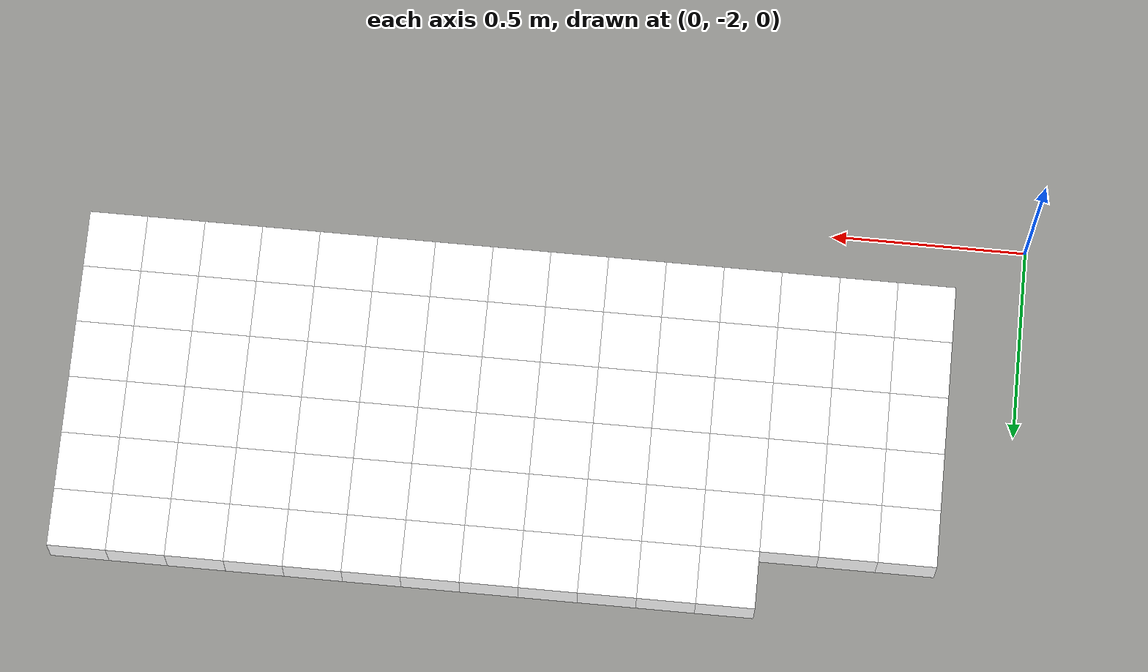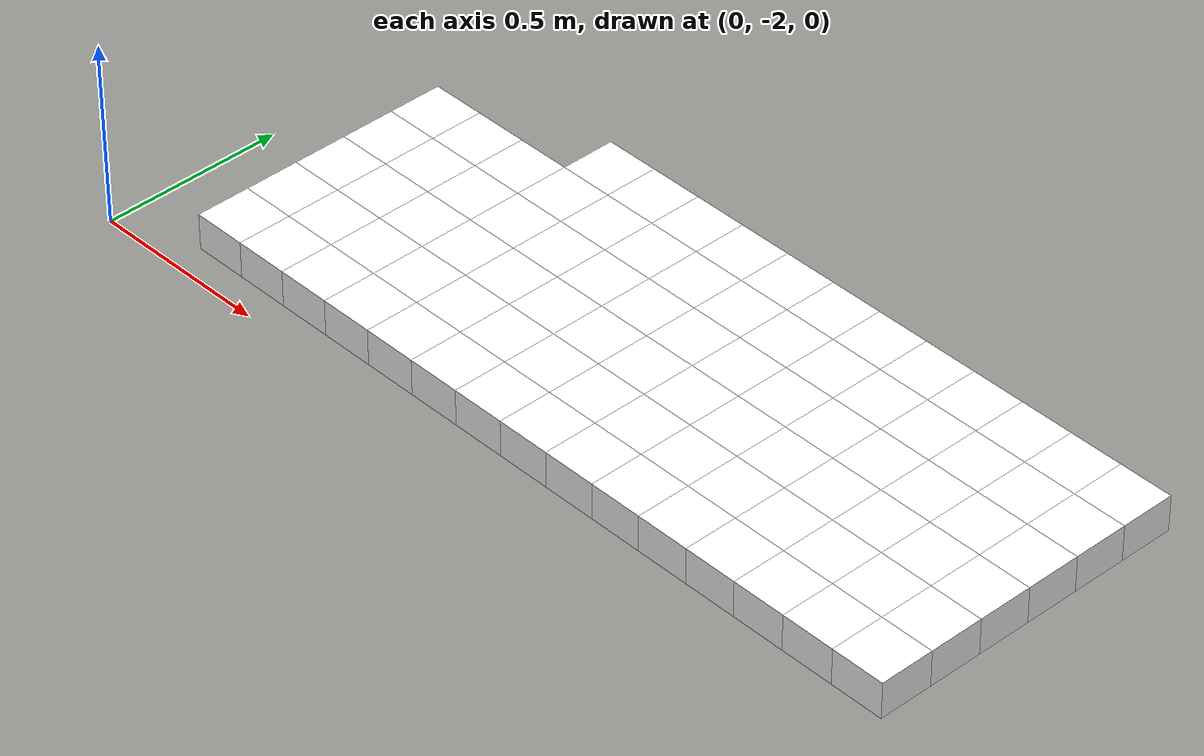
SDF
<sdf version="1.7">
 <world name="default">
  <include><uri>model://sun</uri></include>
  <model name="static_environment">
   <static>true</static>
   <link name="region_312">
    <pose>0.24983982640057123 -1.2002001987395294 0.0 0.0 0.0 4.7123</pose>
    <collision name="region_312_collision">
     <geometry><box><size>0.15 0.15 0.1</size></box></geometry>
     <surface><friction><ode><mu>1.0</mu><mu2>1.0</mu2></ode></friction></surface>
    </collision>
    <visual name="region_312_visual">
     <geometry><box><size>0.15 0.15 0.1</size></box></geometry>
     <material><ambient>1.0 1.0 1.0 1.0</ambient><diffuse>1.0 1.0 1.0 1.0</diffuse></material>
    </visual>
   </link>
   <link name="region_313">
    <pose>0.2498264793428855 -1.3502001981457163 0.0 0.0 0.0 4.7123</pose>
    <collision name="region_313_collision">
     <geometry><box><size>0.15 0.15 0.1</size></box></geometry>
     <surface><friction><ode><mu>1.0</mu><mu2>1.0</mu2></ode></friction></surface>
    </collision>
    <visual name="region_313_visual">
     <geometry><box><size>0.15 0.15 0.1</size></box></geometry>
     <material><ambient>1.0 1.0 1.0 1.0</ambient><diffuse>1.0 1.0 1.0 1.0</diffuse></material>
    </visual>
   </link>
   <link name="region_314">
    <pose>0.24981313228519975 -1.5002001975519033 0.0 0.0 0.0 4.7123</pose>
    <collision name="region_314_collision">
     <geometry><box><size>0.15 0.15 0.1</size></box></geometry>
     <surface><friction><ode><mu>1.0</mu><mu2>1.0</mu2></ode></friction></surface>
    </collision>
    <visual name="region_314_visual">
     <geometry><box><size>0.15 0.15 0.1</size></box></geometry>
     <material><ambient>1.0 1.0 1.0 1.0</ambient><diffuse>1.0 1.0 1.0 1.0</diffuse></material>
    </visual>
   </link>
   <link name="region_315">
    <pose>0.24979978522751356 -1.6502001969580897 0.0 0.0 0.0 4.7123</pose>
    <collision name="region_315_collision">
     <geometry><box><size>0.15 0.15 0.1</size></box></geometry>
     <surface><friction><ode><mu>1.0</mu><mu2>1.0</mu2></ode></friction></surface>
    </collision>
    <visual name="region_315_visual">
     <geometry><box><size>0.15 0.15 0.1</size></box></geometry>
     <material><ambient>1.0 1.0 1.0 1.0</ambient><diffuse>1.0 1.0 1.0 1.0</diffuse></material>
    </visual>
   </link>
   <link name="region_316">
    <pose>0.24978643816982782 -1.8002001963642766 0.0 0.0 0.0 4.7123</pose>
    <collision name="region_316_collision">
     <geometry><box><size>0.15 0.15 0.1</size></box></geometry>
     <surface><friction><ode><mu>1.0</mu><mu2>1.0</mu2></ode></friction></surface>
    </collision>
    <visual name="region_316_visual">
     <geometry><box><size>0.15 0.15 0.1</size></box></geometry>
     <material><ambient>1.0 1.0 1.0 1.0</ambient><diffuse>1.0 1.0 1.0 1.0</diffuse></material>
    </visual>
   </link>
   <link name="region_332">
    <pose>0.3998398258067577 -1.2002135457972156 0.0 0.0 0.0 4.7123</pose>
    <collision name="region_332_collision">
     <geometry><box><size>0.15 0.15 0.1</size></box></geometry>
     <surface><friction><ode><mu>1.0</mu><mu2>1.0</mu2></ode></friction></surface>
    </collision>
    <visual name="region_332_visual">
     <geometry><box><size>0.15 0.15 0.1</size></box></geometry>
     <material><ambient>1.0 1.0 1.0 1.0</ambient><diffuse>1.0 1.0 1.0 1.0</diffuse></material>
    </visual>
   </link>
   <link name="region_333">
    <pose>0.39982647874907196 -1.350213545203402 0.0 0.0 0.0 4.7123</pose>
    <collision name="region_333_collision">
     <geometry><box><size>0.15 0.15 0.1</size></box></geometry>
     <surface><friction><ode><mu>1.0</mu><mu2>1.0</mu2></ode></friction></surface>
    </collision>
    <visual name="region_333_visual">
     <geometry><box><size>0.15 0.15 0.1</size></box></geometry>
     <material><ambient>1.0 1.0 1.0 1.0</ambient><diffuse>1.0 1.0 1.0 1.0</diffuse></material>
    </visual>
   </link>
   <link name="region_334">
    <pose>0.3998131316913862 -1.500213544609589 0.0 0.0 0.0 4.7123</pose>
    <collision name="region_334_collision">
     <geometry><box><size>0.15 0.15 0.1</size></box></geometry>
     <surface><friction><ode><mu>1.0</mu><mu2>1.0</mu2></ode></friction></surface>
    </collision>
    <visual name="region_334_visual">
     <geometry><box><size>0.15 0.15 0.1</size></box></geometry>
     <material><ambient>1.0 1.0 1.0 1.0</ambient><diffuse>1.0 1.0 1.0 1.0</diffuse></material>
    </visual>
   </link>
   <link name="region_335">
    <pose>0.39979978463370003 -1.650213544015776 0.0 0.0 0.0 4.7123</pose>
    <collision name="region_335_collision">
     <geometry><box><size>0.15 0.15 0.1</size></box></geometry>
     <surface><friction><ode><mu>1.0</mu><mu2>1.0</mu2></ode></friction></surface>
    </collision>
    <visual name="region_335_visual">
     <geometry><box><size>0.15 0.15 0.1</size></box></geometry>
     <material><ambient>1.0 1.0 1.0 1.0</ambient><diffuse>1.0 1.0 1.0 1.0</diffuse></material>
    </visual>
   </link>
   <link name="region_336">
    <pose>0.3997864375760143 -1.8002135434219624 0.0 0.0 0.0 4.7123</pose>
    <collision name="region_336_collision">
     <geometry><box><size>0.15 0.15 0.1</size></box></geometry>
     <surface><friction><ode><mu>1.0</mu><mu2>1.0</mu2></ode></friction></surface>
    </collision>
    <visual name="region_336_visual">
     <geometry><box><size>0.15 0.15 0.1</size></box></geometry>
     <material><ambient>1.0 1.0 1.0 1.0</ambient><diffuse>1.0 1.0 1.0 1.0</diffuse></material>
    </visual>
   </link>
   <link name="region_352">
    <pose>0.5498398252129446 -1.2002268928549014 0.0 0.0 0.0 4.7123</pose>
    <collision name="region_352_collision">
     <geometry><box><size>0.15 0.15 0.1</size></box></geometry>
     <surface><friction><ode><mu>1.0</mu><mu2>1.0</mu2></ode></friction></surface>
    </collision>
    <visual name="region_352_visual">
     <geometry><box><size>0.15 0.15 0.1</size></box></geometry>
     <material><ambient>1.0 1.0 1.0 1.0</ambient><diffuse>1.0 1.0 1.0 1.0</diffuse></material>
    </visual>
   </link>
   <link name="region_353">
    <pose>0.5498264781552589 -1.3502268922610883 0.0 0.0 0.0 4.7123</pose>
    <collision name="region_353_collision">
     <geometry><box><size>0.15 0.15 0.1</size></box></geometry>
     <surface><friction><ode><mu>1.0</mu><mu2>1.0</mu2></ode></friction></surface>
    </collision>
    <visual name="region_353_visual">
     <geometry><box><size>0.15 0.15 0.1</size></box></geometry>
     <material><ambient>1.0 1.0 1.0 1.0</ambient><diffuse>1.0 1.0 1.0 1.0</diffuse></material>
    </visual>
   </link>
   <link name="region_354">
    <pose>0.5498131310975731 -1.5002268916672747 0.0 0.0 0.0 4.7123</pose>
    <collision name="region_354_collision">
     <geometry><box><size>0.15 0.15 0.1</size></box></geometry>
     <surface><friction><ode><mu>1.0</mu><mu2>1.0</mu2></ode></friction></surface>
    </collision>
    <visual name="region_354_visual">
     <geometry><box><size>0.15 0.15 0.1</size></box></geometry>
     <material><ambient>1.0 1.0 1.0 1.0</ambient><diffuse>1.0 1.0 1.0 1.0</diffuse></material>
    </visual>
   </link>
   <link name="region_355">
    <pose>0.5497997840398869 -1.6502268910734617 0.0 0.0 0.0 4.7123</pose>
    <collision name="region_355_collision">
     <geometry><box><size>0.15 0.15 0.1</size></box></geometry>
     <surface><friction><ode><mu>1.0</mu><mu2>1.0</mu2></ode></friction></surface>
    </collision>
    <visual name="region_355_visual">
     <geometry><box><size>0.15 0.15 0.1</size></box></geometry>
     <material><ambient>1.0 1.0 1.0 1.0</ambient><diffuse>1.0 1.0 1.0 1.0</diffuse></material>
    </visual>
   </link>
   <link name="region_356">
    <pose>0.5497864369822012 -1.8002268904796486 0.0 0.0 0.0 4.7123</pose>
    <collision name="region_356_collision">
     <geometry><box><size>0.15 0.15 0.1</size></box></geometry>
     <surface><friction><ode><mu>1.0</mu><mu2>1.0</mu2></ode></friction></surface>
    </collision>
    <visual name="region_356_visual">
     <geometry><box><size>0.15 0.15 0.1</size></box></geometry>
     <material><ambient>1.0 1.0 1.0 1.0</ambient><diffuse>1.0 1.0 1.0 1.0</diffuse></material>
    </visual>
   </link>
   <link name="region_371">
    <pose>0.6998531716768177 -1.0502402405064006 0.0 0.0 0.0 4.7123</pose>
    <collision name="region_371_collision">
     <geometry><box><size>0.15 0.15 0.1</size></box></geometry>
     <surface><friction><ode><mu>1.0</mu><mu2>1.0</mu2></ode></friction></surface>
    </collision>
    <visual name="region_371_visual">
     <geometry><box><size>0.15 0.15 0.1</size></box></geometry>
     <material><ambient>1.0 1.0 1.0 1.0</ambient><diffuse>1.0 1.0 1.0 1.0</diffuse></material>
    </visual>
   </link>
   <link name="region_372">
    <pose>0.6998398246191315 -1.200240239912587 0.0 0.0 0.0 4.7123</pose>
    <collision name="region_372_collision">
     <geometry><box><size>0.15 0.15 0.1</size></box></geometry>
     <surface><friction><ode><mu>1.0</mu><mu2>1.0</mu2></ode></friction></surface>
    </collision>
    <visual name="region_372_visual">
     <geometry><box><size>0.15 0.15 0.1</size></box></geometry>
     <material><ambient>1.0 1.0 1.0 1.0</ambient><diffuse>1.0 1.0 1.0 1.0</diffuse></material>
    </visual>
   </link>
   <link name="region_373">
    <pose>0.6998264775614458 -1.350240239318774 0.0 0.0 0.0 4.7123</pose>
    <collision name="region_373_collision">
     <geometry><box><size>0.15 0.15 0.1</size></box></geometry>
     <surface><friction><ode><mu>1.0</mu><mu2>1.0</mu2></ode></friction></surface>
    </collision>
    <visual name="region_373_visual">
     <geometry><box><size>0.15 0.15 0.1</size></box></geometry>
     <material><ambient>1.0 1.0 1.0 1.0</ambient><diffuse>1.0 1.0 1.0 1.0</diffuse></material>
    </visual>
   </link>
   <link name="region_374">
    <pose>0.69981313050376 -1.500240238724961 0.0 0.0 0.0 4.7123</pose>
    <collision name="region_374_collision">
     <geometry><box><size>0.15 0.15 0.1</size></box></geometry>
     <surface><friction><ode><mu>1.0</mu><mu2>1.0</mu2></ode></friction></surface>
    </collision>
    <visual name="region_374_visual">
     <geometry><box><size>0.15 0.15 0.1</size></box></geometry>
     <material><ambient>1.0 1.0 1.0 1.0</ambient><diffuse>1.0 1.0 1.0 1.0</diffuse></material>
    </visual>
   </link>
   <link name="region_375">
    <pose>0.6997997834460739 -1.6502402381311474 0.0 0.0 0.0 4.7123</pose>
    <collision name="region_375_collision">
     <geometry><box><size>0.15 0.15 0.1</size></box></geometry>
     <surface><friction><ode><mu>1.0</mu><mu2>1.0</mu2></ode></friction></surface>
    </collision>
    <visual name="region_375_visual">
     <geometry><box><size>0.15 0.15 0.1</size></box></geometry>
     <material><ambient>1.0 1.0 1.0 1.0</ambient><diffuse>1.0 1.0 1.0 1.0</diffuse></material>
    </visual>
   </link>
   <link name="region_376">
    <pose>0.6997864363883881 -1.8002402375373343 0.0 0.0 0.0 4.7123</pose>
    <collision name="region_376_collision">
     <geometry><box><size>0.15 0.15 0.1</size></box></geometry>
     <surface><friction><ode><mu>1.0</mu><mu2>1.0</mu2></ode></friction></surface>
    </collision>
    <visual name="region_376_visual">
     <geometry><box><size>0.15 0.15 0.1</size></box></geometry>
     <material><ambient>1.0 1.0 1.0 1.0</ambient><diffuse>1.0 1.0 1.0 1.0</diffuse></material>
    </visual>
   </link>
   <link name="region_391">
    <pose>0.8498531710830042 -1.0502535875640864 0.0 0.0 0.0 4.7123</pose>
    <collision name="region_391_collision">
     <geometry><box><size>0.15 0.15 0.1</size></box></geometry>
     <surface><friction><ode><mu>1.0</mu><mu2>1.0</mu2></ode></friction></surface>
    </collision>
    <visual name="region_391_visual">
     <geometry><box><size>0.15 0.15 0.1</size></box></geometry>
     <material><ambient>1.0 1.0 1.0 1.0</ambient><diffuse>1.0 1.0 1.0 1.0</diffuse></material>
    </visual>
   </link>
   <link name="region_392">
    <pose>0.849839824025318 -1.2002535869702733 0.0 0.0 0.0 4.7123</pose>
    <collision name="region_392_collision">
     <geometry><box><size>0.15 0.15 0.1</size></box></geometry>
     <surface><friction><ode><mu>1.0</mu><mu2>1.0</mu2></ode></friction></surface>
    </collision>
    <visual name="region_392_visual">
     <geometry><box><size>0.15 0.15 0.1</size></box></geometry>
     <material><ambient>1.0 1.0 1.0 1.0</ambient><diffuse>1.0 1.0 1.0 1.0</diffuse></material>
    </visual>
   </link>
   <link name="region_393">
    <pose>0.8498264769676322 -1.3502535863764598 0.0 0.0 0.0 4.7123</pose>
    <collision name="region_393_collision">
     <geometry><box><size>0.15 0.15 0.1</size></box></geometry>
     <surface><friction><ode><mu>1.0</mu><mu2>1.0</mu2></ode></friction></surface>
    </collision>
    <visual name="region_393_visual">
     <geometry><box><size>0.15 0.15 0.1</size></box></geometry>
     <material><ambient>1.0 1.0 1.0 1.0</ambient><diffuse>1.0 1.0 1.0 1.0</diffuse></material>
    </visual>
   </link>
   <link name="region_394">
    <pose>0.8498131299099465 -1.5002535857826467 0.0 0.0 0.0 4.7123</pose>
    <collision name="region_394_collision">
     <geometry><box><size>0.15 0.15 0.1</size></box></geometry>
     <surface><friction><ode><mu>1.0</mu><mu2>1.0</mu2></ode></friction></surface>
    </collision>
    <visual name="region_394_visual">
     <geometry><box><size>0.15 0.15 0.1</size></box></geometry>
     <material><ambient>1.0 1.0 1.0 1.0</ambient><diffuse>1.0 1.0 1.0 1.0</diffuse></material>
    </visual>
   </link>
   <link name="region_395">
    <pose>0.8497997828522603 -1.6502535851888336 0.0 0.0 0.0 4.7123</pose>
    <collision name="region_395_collision">
     <geometry><box><size>0.15 0.15 0.1</size></box></geometry>
     <surface><friction><ode><mu>1.0</mu><mu2>1.0</mu2></ode></friction></surface>
    </collision>
    <visual name="region_395_visual">
     <geometry><box><size>0.15 0.15 0.1</size></box></geometry>
     <material><ambient>1.0 1.0 1.0 1.0</ambient><diffuse>1.0 1.0 1.0 1.0</diffuse></material>
    </visual>
   </link>
   <link name="region_396">
    <pose>0.8497864357945746 -1.80025358459502 0.0 0.0 0.0 4.7123</pose>
    <collision name="region_396_collision">
     <geometry><box><size>0.15 0.15 0.1</size></box></geometry>
     <surface><friction><ode><mu>1.0</mu><mu2>1.0</mu2></ode></friction></surface>
    </collision>
    <visual name="region_396_visual">
     <geometry><box><size>0.15 0.15 0.1</size></box></geometry>
     <material><ambient>1.0 1.0 1.0 1.0</ambient><diffuse>1.0 1.0 1.0 1.0</diffuse></material>
    </visual>
   </link>
   <link name="region_411">
    <pose>0.9998531704891911 -1.0502669346217721 0.0 0.0 0.0 4.7123</pose>
    <collision name="region_411_collision">
     <geometry><box><size>0.15 0.15 0.1</size></box></geometry>
     <surface><friction><ode><mu>1.0</mu><mu2>1.0</mu2></ode></friction></surface>
    </collision>
    <visual name="region_411_visual">
     <geometry><box><size>0.15 0.15 0.1</size></box></geometry>
     <material><ambient>1.0 1.0 1.0 1.0</ambient><diffuse>1.0 1.0 1.0 1.0</diffuse></material>
    </visual>
   </link>
   <link name="region_412">
    <pose>0.9998398234315049 -1.200266934027959 0.0 0.0 0.0 4.7123</pose>
    <collision name="region_412_collision">
     <geometry><box><size>0.15 0.15 0.1</size></box></geometry>
     <surface><friction><ode><mu>1.0</mu><mu2>1.0</mu2></ode></friction></surface>
    </collision>
    <visual name="region_412_visual">
     <geometry><box><size>0.15 0.15 0.1</size></box></geometry>
     <material><ambient>1.0 1.0 1.0 1.0</ambient><diffuse>1.0 1.0 1.0 1.0</diffuse></material>
    </visual>
   </link>
   <link name="region_413">
    <pose>0.9998264763738192 -1.3502669334341455 0.0 0.0 0.0 4.7123</pose>
    <collision name="region_413_collision">
     <geometry><box><size>0.15 0.15 0.1</size></box></geometry>
     <surface><friction><ode><mu>1.0</mu><mu2>1.0</mu2></ode></friction></surface>
    </collision>
    <visual name="region_413_visual">
     <geometry><box><size>0.15 0.15 0.1</size></box></geometry>
     <material><ambient>1.0 1.0 1.0 1.0</ambient><diffuse>1.0 1.0 1.0 1.0</diffuse></material>
    </visual>
   </link>
   <link name="region_414">
    <pose>0.9998131293161334 -1.5002669328403324 0.0 0.0 0.0 4.7123</pose>
    <collision name="region_414_collision">
     <geometry><box><size>0.15 0.15 0.1</size></box></geometry>
     <surface><friction><ode><mu>1.0</mu><mu2>1.0</mu2></ode></friction></surface>
    </collision>
    <visual name="region_414_visual">
     <geometry><box><size>0.15 0.15 0.1</size></box></geometry>
     <material><ambient>1.0 1.0 1.0 1.0</ambient><diffuse>1.0 1.0 1.0 1.0</diffuse></material>
    </visual>
   </link>
   <link name="region_415">
    <pose>0.9997997822584472 -1.6502669322465193 0.0 0.0 0.0 4.7123</pose>
    <collision name="region_415_collision">
     <geometry><box><size>0.15 0.15 0.1</size></box></geometry>
     <surface><friction><ode><mu>1.0</mu><mu2>1.0</mu2></ode></friction></surface>
    </collision>
    <visual name="region_415_visual">
     <geometry><box><size>0.15 0.15 0.1</size></box></geometry>
     <material><ambient>1.0 1.0 1.0 1.0</ambient><diffuse>1.0 1.0 1.0 1.0</diffuse></material>
    </visual>
   </link>
   <link name="region_416">
    <pose>0.9997864352007615 -1.8002669316527058 0.0 0.0 0.0 4.7123</pose>
    <collision name="region_416_collision">
     <geometry><box><size>0.15 0.15 0.1</size></box></geometry>
     <surface><friction><ode><mu>1.0</mu><mu2>1.0</mu2></ode></friction></surface>
    </collision>
    <visual name="region_416_visual">
     <geometry><box><size>0.15 0.15 0.1</size></box></geometry>
     <material><ambient>1.0 1.0 1.0 1.0</ambient><diffuse>1.0 1.0 1.0 1.0</diffuse></material>
    </visual>
   </link>
   <link name="region_431">
    <pose>1.1498531698953776 -1.0502802816794583 0.0 0.0 0.0 4.7123</pose>
    <collision name="region_431_collision">
     <geometry><box><size>0.15 0.15 0.1</size></box></geometry>
     <surface><friction><ode><mu>1.0</mu><mu2>1.0</mu2></ode></friction></surface>
    </collision>
    <visual name="region_431_visual">
     <geometry><box><size>0.15 0.15 0.1</size></box></geometry>
     <material><ambient>1.0 1.0 1.0 1.0</ambient><diffuse>1.0 1.0 1.0 1.0</diffuse></material>
    </visual>
   </link>
   <link name="region_432">
    <pose>1.1498398228376914 -1.2002802810856448 0.0 0.0 0.0 4.7123</pose>
    <collision name="region_432_collision">
     <geometry><box><size>0.15 0.15 0.1</size></box></geometry>
     <surface><friction><ode><mu>1.0</mu><mu2>1.0</mu2></ode></friction></surface>
    </collision>
    <visual name="region_432_visual">
     <geometry><box><size>0.15 0.15 0.1</size></box></geometry>
     <material><ambient>1.0 1.0 1.0 1.0</ambient><diffuse>1.0 1.0 1.0 1.0</diffuse></material>
    </visual>
   </link>
   <link name="region_433">
    <pose>1.1498264757800056 -1.3502802804918317 0.0 0.0 0.0 4.7123</pose>
    <collision name="region_433_collision">
     <geometry><box><size>0.15 0.15 0.1</size></box></geometry>
     <surface><friction><ode><mu>1.0</mu><mu2>1.0</mu2></ode></friction></surface>
    </collision>
    <visual name="region_433_visual">
     <geometry><box><size>0.15 0.15 0.1</size></box></geometry>
     <material><ambient>1.0 1.0 1.0 1.0</ambient><diffuse>1.0 1.0 1.0 1.0</diffuse></material>
    </visual>
   </link>
   <link name="region_434">
    <pose>1.1498131287223199 -1.5002802798980186 0.0 0.0 0.0 4.7123</pose>
    <collision name="region_434_collision">
     <geometry><box><size>0.15 0.15 0.1</size></box></geometry>
     <surface><friction><ode><mu>1.0</mu><mu2>1.0</mu2></ode></friction></surface>
    </collision>
    <visual name="region_434_visual">
     <geometry><box><size>0.15 0.15 0.1</size></box></geometry>
     <material><ambient>1.0 1.0 1.0 1.0</ambient><diffuse>1.0 1.0 1.0 1.0</diffuse></material>
    </visual>
   </link>
   <link name="region_435">
    <pose>1.1497997816646337 -1.650280279304205 0.0 0.0 0.0 4.7123</pose>
    <collision name="region_435_collision">
     <geometry><box><size>0.15 0.15 0.1</size></box></geometry>
     <surface><friction><ode><mu>1.0</mu><mu2>1.0</mu2></ode></friction></surface>
    </collision>
    <visual name="region_435_visual">
     <geometry><box><size>0.15 0.15 0.1</size></box></geometry>
     <material><ambient>1.0 1.0 1.0 1.0</ambient><diffuse>1.0 1.0 1.0 1.0</diffuse></material>
    </visual>
   </link>
   <link name="region_436">
    <pose>1.149786434606948 -1.800280278710392 0.0 0.0 0.0 4.7123</pose>
    <collision name="region_436_collision">
     <geometry><box><size>0.15 0.15 0.1</size></box></geometry>
     <surface><friction><ode><mu>1.0</mu><mu2>1.0</mu2></ode></friction></surface>
    </collision>
    <visual name="region_436_visual">
     <geometry><box><size>0.15 0.15 0.1</size></box></geometry>
     <material><ambient>1.0 1.0 1.0 1.0</ambient><diffuse>1.0 1.0 1.0 1.0</diffuse></material>
    </visual>
   </link>
   <link name="region_451">
    <pose>1.2998531693015645 -1.050293628737144 0.0 0.0 0.0 4.7123</pose>
    <collision name="region_451_collision">
     <geometry><box><size>0.15 0.15 0.1</size></box></geometry>
     <surface><friction><ode><mu>1.0</mu><mu2>1.0</mu2></ode></friction></surface>
    </collision>
    <visual name="region_451_visual">
     <geometry><box><size>0.15 0.15 0.1</size></box></geometry>
     <material><ambient>1.0 1.0 1.0 1.0</ambient><diffuse>1.0 1.0 1.0 1.0</diffuse></material>
    </visual>
   </link>
   <link name="region_452">
    <pose>1.2998398222438783 -1.2002936281433305 0.0 0.0 0.0 4.7123</pose>
    <collision name="region_452_collision">
     <geometry><box><size>0.15 0.15 0.1</size></box></geometry>
     <surface><friction><ode><mu>1.0</mu><mu2>1.0</mu2></ode></friction></surface>
    </collision>
    <visual name="region_452_visual">
     <geometry><box><size>0.15 0.15 0.1</size></box></geometry>
     <material><ambient>1.0 1.0 1.0 1.0</ambient><diffuse>1.0 1.0 1.0 1.0</diffuse></material>
    </visual>
   </link>
   <link name="region_453">
    <pose>1.2998264751861925 -1.3502936275495174 0.0 0.0 0.0 4.7123</pose>
    <collision name="region_453_collision">
     <geometry><box><size>0.15 0.15 0.1</size></box></geometry>
     <surface><friction><ode><mu>1.0</mu><mu2>1.0</mu2></ode></friction></surface>
    </collision>
    <visual name="region_453_visual">
     <geometry><box><size>0.15 0.15 0.1</size></box></geometry>
     <material><ambient>1.0 1.0 1.0 1.0</ambient><diffuse>1.0 1.0 1.0 1.0</diffuse></material>
    </visual>
   </link>
   <link name="region_454">
    <pose>1.2998131281285068 -1.5002936269557043 0.0 0.0 0.0 4.7123</pose>
    <collision name="region_454_collision">
     <geometry><box><size>0.15 0.15 0.1</size></box></geometry>
     <surface><friction><ode><mu>1.0</mu><mu2>1.0</mu2></ode></friction></surface>
    </collision>
    <visual name="region_454_visual">
     <geometry><box><size>0.15 0.15 0.1</size></box></geometry>
     <material><ambient>1.0 1.0 1.0 1.0</ambient><diffuse>1.0 1.0 1.0 1.0</diffuse></material>
    </visual>
   </link>
   <link name="region_455">
    <pose>1.2997997810708206 -1.6502936263618908 0.0 0.0 0.0 4.7123</pose>
    <collision name="region_455_collision">
     <geometry><box><size>0.15 0.15 0.1</size></box></geometry>
     <surface><friction><ode><mu>1.0</mu><mu2>1.0</mu2></ode></friction></surface>
    </collision>
    <visual name="region_455_visual">
     <geometry><box><size>0.15 0.15 0.1</size></box></geometry>
     <material><ambient>1.0 1.0 1.0 1.0</ambient><diffuse>1.0 1.0 1.0 1.0</diffuse></material>
    </visual>
   </link>
   <link name="region_456">
    <pose>1.2997864340131349 -1.8002936257680777 0.0 0.0 0.0 4.7123</pose>
    <collision name="region_456_collision">
     <geometry><box><size>0.15 0.15 0.1</size></box></geometry>
     <surface><friction><ode><mu>1.0</mu><mu2>1.0</mu2></ode></friction></surface>
    </collision>
    <visual name="region_456_visual">
     <geometry><box><size>0.15 0.15 0.1</size></box></geometry>
     <material><ambient>1.0 1.0 1.0 1.0</ambient><diffuse>1.0 1.0 1.0 1.0</diffuse></material>
    </visual>
   </link>
   <link name="region_471">
    <pose>1.4498531687077514 -1.0503069757948298 0.0 0.0 0.0 4.7123</pose>
    <collision name="region_471_collision">
     <geometry><box><size>0.15 0.15 0.1</size></box></geometry>
     <surface><friction><ode><mu>1.0</mu><mu2>1.0</mu2></ode></friction></surface>
    </collision>
    <visual name="region_471_visual">
     <geometry><box><size>0.15 0.15 0.1</size></box></geometry>
     <material><ambient>1.0 1.0 1.0 1.0</ambient><diffuse>1.0 1.0 1.0 1.0</diffuse></material>
    </visual>
   </link>
   <link name="region_472">
    <pose>1.4498398216500652 -1.2003069752010167 0.0 0.0 0.0 4.7123</pose>
    <collision name="region_472_collision">
     <geometry><box><size>0.15 0.15 0.1</size></box></geometry>
     <surface><friction><ode><mu>1.0</mu><mu2>1.0</mu2></ode></friction></surface>
    </collision>
    <visual name="region_472_visual">
     <geometry><box><size>0.15 0.15 0.1</size></box></geometry>
     <material><ambient>1.0 1.0 1.0 1.0</ambient><diffuse>1.0 1.0 1.0 1.0</diffuse></material>
    </visual>
   </link>
   <link name="region_473">
    <pose>1.4498264745923795 -1.3503069746072032 0.0 0.0 0.0 4.7123</pose>
    <collision name="region_473_collision">
     <geometry><box><size>0.15 0.15 0.1</size></box></geometry>
     <surface><friction><ode><mu>1.0</mu><mu2>1.0</mu2></ode></friction></surface>
    </collision>
    <visual name="region_473_visual">
     <geometry><box><size>0.15 0.15 0.1</size></box></geometry>
     <material><ambient>1.0 1.0 1.0 1.0</ambient><diffuse>1.0 1.0 1.0 1.0</diffuse></material>
    </visual>
   </link>
   <link name="region_474">
    <pose>1.4498131275346937 -1.50030697401339 0.0 0.0 0.0 4.7123</pose>
    <collision name="region_474_collision">
     <geometry><box><size>0.15 0.15 0.1</size></box></geometry>
     <surface><friction><ode><mu>1.0</mu><mu2>1.0</mu2></ode></friction></surface>
    </collision>
    <visual name="region_474_visual">
     <geometry><box><size>0.15 0.15 0.1</size></box></geometry>
     <material><ambient>1.0 1.0 1.0 1.0</ambient><diffuse>1.0 1.0 1.0 1.0</diffuse></material>
    </visual>
   </link>
   <link name="region_475">
    <pose>1.4497997804770075 -1.650306973419577 0.0 0.0 0.0 4.7123</pose>
    <collision name="region_475_collision">
     <geometry><box><size>0.15 0.15 0.1</size></box></geometry>
     <surface><friction><ode><mu>1.0</mu><mu2>1.0</mu2></ode></friction></surface>
    </collision>
    <visual name="region_475_visual">
     <geometry><box><size>0.15 0.15 0.1</size></box></geometry>
     <material><ambient>1.0 1.0 1.0 1.0</ambient><diffuse>1.0 1.0 1.0 1.0</diffuse></material>
    </visual>
   </link>
   <link name="region_476">
    <pose>1.4497864334193218 -1.8003069728257635 0.0 0.0 0.0 4.7123</pose>
    <collision name="region_476_collision">
     <geometry><box><size>0.15 0.15 0.1</size></box></geometry>
     <surface><friction><ode><mu>1.0</mu><mu2>1.0</mu2></ode></friction></surface>
    </collision>
    <visual name="region_476_visual">
     <geometry><box><size>0.15 0.15 0.1</size></box></geometry>
     <material><ambient>1.0 1.0 1.0 1.0</ambient><diffuse>1.0 1.0 1.0 1.0</diffuse></material>
    </visual>
   </link>
   <link name="region_491">
    <pose>1.5998531681139379 -1.0503203228525155 0.0 0.0 0.0 4.7123</pose>
    <collision name="region_491_collision">
     <geometry><box><size>0.15 0.15 0.1</size></box></geometry>
     <surface><friction><ode><mu>1.0</mu><mu2>1.0</mu2></ode></friction></surface>
    </collision>
    <visual name="region_491_visual">
     <geometry><box><size>0.15 0.15 0.1</size></box></geometry>
     <material><ambient>1.0 1.0 1.0 1.0</ambient><diffuse>1.0 1.0 1.0 1.0</diffuse></material>
    </visual>
   </link>
   <link name="region_492">
    <pose>1.5998398210562517 -1.2003203222587024 0.0 0.0 0.0 4.7123</pose>
    <collision name="region_492_collision">
     <geometry><box><size>0.15 0.15 0.1</size></box></geometry>
     <surface><friction><ode><mu>1.0</mu><mu2>1.0</mu2></ode></friction></surface>
    </collision>
    <visual name="region_492_visual">
     <geometry><box><size>0.15 0.15 0.1</size></box></geometry>
     <material><ambient>1.0 1.0 1.0 1.0</ambient><diffuse>1.0 1.0 1.0 1.0</diffuse></material>
    </visual>
   </link>
   <link name="region_493">
    <pose>1.599826473998566 -1.3503203216648894 0.0 0.0 0.0 4.7123</pose>
    <collision name="region_493_collision">
     <geometry><box><size>0.15 0.15 0.1</size></box></geometry>
     <surface><friction><ode><mu>1.0</mu><mu2>1.0</mu2></ode></friction></surface>
    </collision>
    <visual name="region_493_visual">
     <geometry><box><size>0.15 0.15 0.1</size></box></geometry>
     <material><ambient>1.0 1.0 1.0 1.0</ambient><diffuse>1.0 1.0 1.0 1.0</diffuse></material>
    </visual>
   </link>
   <link name="region_494">
    <pose>1.5998131269408802 -1.5003203210710758 0.0 0.0 0.0 4.7123</pose>
    <collision name="region_494_collision">
     <geometry><box><size>0.15 0.15 0.1</size></box></geometry>
     <surface><friction><ode><mu>1.0</mu><mu2>1.0</mu2></ode></friction></surface>
    </collision>
    <visual name="region_494_visual">
     <geometry><box><size>0.15 0.15 0.1</size></box></geometry>
     <material><ambient>1.0 1.0 1.0 1.0</ambient><diffuse>1.0 1.0 1.0 1.0</diffuse></material>
    </visual>
   </link>
   <link name="region_495">
    <pose>1.599799779883194 -1.6503203204772627 0.0 0.0 0.0 4.7123</pose>
    <collision name="region_495_collision">
     <geometry><box><size>0.15 0.15 0.1</size></box></geometry>
     <surface><friction><ode><mu>1.0</mu><mu2>1.0</mu2></ode></friction></surface>
    </collision>
    <visual name="region_495_visual">
     <geometry><box><size>0.15 0.15 0.1</size></box></geometry>
     <material><ambient>1.0 1.0 1.0 1.0</ambient><diffuse>1.0 1.0 1.0 1.0</diffuse></material>
    </visual>
   </link>
   <link name="region_496">
    <pose>1.5997864328255083 -1.8003203198834496 0.0 0.0 0.0 4.7123</pose>
    <collision name="region_496_collision">
     <geometry><box><size>0.15 0.15 0.1</size></box></geometry>
     <surface><friction><ode><mu>1.0</mu><mu2>1.0</mu2></ode></friction></surface>
    </collision>
    <visual name="region_496_visual">
     <geometry><box><size>0.15 0.15 0.1</size></box></geometry>
     <material><ambient>1.0 1.0 1.0 1.0</ambient><diffuse>1.0 1.0 1.0 1.0</diffuse></material>
    </visual>
   </link>
   <link name="region_511">
    <pose>1.7498531675201248 -1.0503336699102017 0.0 0.0 0.0 4.7123</pose>
    <collision name="region_511_collision">
     <geometry><box><size>0.15 0.15 0.1</size></box></geometry>
     <surface><friction><ode><mu>1.0</mu><mu2>1.0</mu2></ode></friction></surface>
    </collision>
    <visual name="region_511_visual">
     <geometry><box><size>0.15 0.15 0.1</size></box></geometry>
     <material><ambient>1.0 1.0 1.0 1.0</ambient><diffuse>1.0 1.0 1.0 1.0</diffuse></material>
    </visual>
   </link>
   <link name="region_512">
    <pose>1.7498398204624386 -1.2003336693163882 0.0 0.0 0.0 4.7123</pose>
    <collision name="region_512_collision">
     <geometry><box><size>0.15 0.15 0.1</size></box></geometry>
     <surface><friction><ode><mu>1.0</mu><mu2>1.0</mu2></ode></friction></surface>
    </collision>
    <visual name="region_512_visual">
     <geometry><box><size>0.15 0.15 0.1</size></box></geometry>
     <material><ambient>1.0 1.0 1.0 1.0</ambient><diffuse>1.0 1.0 1.0 1.0</diffuse></material>
    </visual>
   </link>
   <link name="region_513">
    <pose>1.7498264734047528 -1.350333668722575 0.0 0.0 0.0 4.7123</pose>
    <collision name="region_513_collision">
     <geometry><box><size>0.15 0.15 0.1</size></box></geometry>
     <surface><friction><ode><mu>1.0</mu><mu2>1.0</mu2></ode></friction></surface>
    </collision>
    <visual name="region_513_visual">
     <geometry><box><size>0.15 0.15 0.1</size></box></geometry>
     <material><ambient>1.0 1.0 1.0 1.0</ambient><diffuse>1.0 1.0 1.0 1.0</diffuse></material>
    </visual>
   </link>
   <link name="region_514">
    <pose>1.749813126347067 -1.500333668128762 0.0 0.0 0.0 4.7123</pose>
    <collision name="region_514_collision">
     <geometry><box><size>0.15 0.15 0.1</size></box></geometry>
     <surface><friction><ode><mu>1.0</mu><mu2>1.0</mu2></ode></friction></surface>
    </collision>
    <visual name="region_514_visual">
     <geometry><box><size>0.15 0.15 0.1</size></box></geometry>
     <material><ambient>1.0 1.0 1.0 1.0</ambient><diffuse>1.0 1.0 1.0 1.0</diffuse></material>
    </visual>
   </link>
   <link name="region_515">
    <pose>1.749799779289381 -1.6503336675349485 0.0 0.0 0.0 4.7123</pose>
    <collision name="region_515_collision">
     <geometry><box><size>0.15 0.15 0.1</size></box></geometry>
     <surface><friction><ode><mu>1.0</mu><mu2>1.0</mu2></ode></friction></surface>
    </collision>
    <visual name="region_515_visual">
     <geometry><box><size>0.15 0.15 0.1</size></box></geometry>
     <material><ambient>1.0 1.0 1.0 1.0</ambient><diffuse>1.0 1.0 1.0 1.0</diffuse></material>
    </visual>
   </link>
   <link name="region_516">
    <pose>1.7497864322316952 -1.8003336669411354 0.0 0.0 0.0 4.7123</pose>
    <collision name="region_516_collision">
     <geometry><box><size>0.15 0.15 0.1</size></box></geometry>
     <surface><friction><ode><mu>1.0</mu><mu2>1.0</mu2></ode></friction></surface>
    </collision>
    <visual name="region_516_visual">
     <geometry><box><size>0.15 0.15 0.1</size></box></geometry>
     <material><ambient>1.0 1.0 1.0 1.0</ambient><diffuse>1.0 1.0 1.0 1.0</diffuse></material>
    </visual>
   </link>
   <link name="region_531">
    <pose>1.8998531669263112 -1.0503470169678875 0.0 0.0 0.0 4.7123</pose>
    <collision name="region_531_collision">
     <geometry><box><size>0.15 0.15 0.1</size></box></geometry>
     <surface><friction><ode><mu>1.0</mu><mu2>1.0</mu2></ode></friction></surface>
    </collision>
    <visual name="region_531_visual">
     <geometry><box><size>0.15 0.15 0.1</size></box></geometry>
     <material><ambient>1.0 1.0 1.0 1.0</ambient><diffuse>1.0 1.0 1.0 1.0</diffuse></material>
    </visual>
   </link>
   <link name="region_532">
    <pose>1.899839819868625 -1.2003470163740744 0.0 0.0 0.0 4.7123</pose>
    <collision name="region_532_collision">
     <geometry><box><size>0.15 0.15 0.1</size></box></geometry>
     <surface><friction><ode><mu>1.0</mu><mu2>1.0</mu2></ode></friction></surface>
    </collision>
    <visual name="region_532_visual">
     <geometry><box><size>0.15 0.15 0.1</size></box></geometry>
     <material><ambient>1.0 1.0 1.0 1.0</ambient><diffuse>1.0 1.0 1.0 1.0</diffuse></material>
    </visual>
   </link>
   <link name="region_533">
    <pose>1.8998264728109393 -1.3503470157802608 0.0 0.0 0.0 4.7123</pose>
    <collision name="region_533_collision">
     <geometry><box><size>0.15 0.15 0.1</size></box></geometry>
     <surface><friction><ode><mu>1.0</mu><mu2>1.0</mu2></ode></friction></surface>
    </collision>
    <visual name="region_533_visual">
     <geometry><box><size>0.15 0.15 0.1</size></box></geometry>
     <material><ambient>1.0 1.0 1.0 1.0</ambient><diffuse>1.0 1.0 1.0 1.0</diffuse></material>
    </visual>
   </link>
   <link name="region_534">
    <pose>1.8998131257532536 -1.5003470151864478 0.0 0.0 0.0 4.7123</pose>
    <collision name="region_534_collision">
     <geometry><box><size>0.15 0.15 0.1</size></box></geometry>
     <surface><friction><ode><mu>1.0</mu><mu2>1.0</mu2></ode></friction></surface>
    </collision>
    <visual name="region_534_visual">
     <geometry><box><size>0.15 0.15 0.1</size></box></geometry>
     <material><ambient>1.0 1.0 1.0 1.0</ambient><diffuse>1.0 1.0 1.0 1.0</diffuse></material>
    </visual>
   </link>
   <link name="region_535">
    <pose>1.8997997786955674 -1.6503470145926347 0.0 0.0 0.0 4.7123</pose>
    <collision name="region_535_collision">
     <geometry><box><size>0.15 0.15 0.1</size></box></geometry>
     <surface><friction><ode><mu>1.0</mu><mu2>1.0</mu2></ode></friction></surface>
    </collision>
    <visual name="region_535_visual">
     <geometry><box><size>0.15 0.15 0.1</size></box></geometry>
     <material><ambient>1.0 1.0 1.0 1.0</ambient><diffuse>1.0 1.0 1.0 1.0</diffuse></material>
    </visual>
   </link>
   <link name="region_536">
    <pose>1.8997864316378816 -1.8003470139988211 0.0 0.0 0.0 4.7123</pose>
    <collision name="region_536_collision">
     <geometry><box><size>0.15 0.15 0.1</size></box></geometry>
     <surface><friction><ode><mu>1.0</mu><mu2>1.0</mu2></ode></friction></surface>
    </collision>
    <visual name="region_536_visual">
     <geometry><box><size>0.15 0.15 0.1</size></box></geometry>
     <material><ambient>1.0 1.0 1.0 1.0</ambient><diffuse>1.0 1.0 1.0 1.0</diffuse></material>
    </visual>
   </link>
   <link name="region_551">
    <pose>2.0498531663324977 -1.0503603640255732 0.0 0.0 0.0 4.7123</pose>
    <collision name="region_551_collision">
     <geometry><box><size>0.15 0.15 0.1</size></box></geometry>
     <surface><friction><ode><mu>1.0</mu><mu2>1.0</mu2></ode></friction></surface>
    </collision>
    <visual name="region_551_visual">
     <geometry><box><size>0.15 0.15 0.1</size></box></geometry>
     <material><ambient>1.0 1.0 1.0 1.0</ambient><diffuse>1.0 1.0 1.0 1.0</diffuse></material>
    </visual>
   </link>
   <link name="region_552">
    <pose>2.049839819274812 -1.2003603634317601 0.0 0.0 0.0 4.7123</pose>
    <collision name="region_552_collision">
     <geometry><box><size>0.15 0.15 0.1</size></box></geometry>
     <surface><friction><ode><mu>1.0</mu><mu2>1.0</mu2></ode></friction></surface>
    </collision>
    <visual name="region_552_visual">
     <geometry><box><size>0.15 0.15 0.1</size></box></geometry>
     <material><ambient>1.0 1.0 1.0 1.0</ambient><diffuse>1.0 1.0 1.0 1.0</diffuse></material>
    </visual>
   </link>
   <link name="region_553">
    <pose>2.049826472217126 -1.350360362837947 0.0 0.0 0.0 4.7123</pose>
    <collision name="region_553_collision">
     <geometry><box><size>0.15 0.15 0.1</size></box></geometry>
     <surface><friction><ode><mu>1.0</mu><mu2>1.0</mu2></ode></friction></surface>
    </collision>
    <visual name="region_553_visual">
     <geometry><box><size>0.15 0.15 0.1</size></box></geometry>
     <material><ambient>1.0 1.0 1.0 1.0</ambient><diffuse>1.0 1.0 1.0 1.0</diffuse></material>
    </visual>
   </link>
   <link name="region_554">
    <pose>2.0498131251594405 -1.5003603622441335 0.0 0.0 0.0 4.7123</pose>
    <collision name="region_554_collision">
     <geometry><box><size>0.15 0.15 0.1</size></box></geometry>
     <surface><friction><ode><mu>1.0</mu><mu2>1.0</mu2></ode></friction></surface>
    </collision>
    <visual name="region_554_visual">
     <geometry><box><size>0.15 0.15 0.1</size></box></geometry>
     <material><ambient>1.0 1.0 1.0 1.0</ambient><diffuse>1.0 1.0 1.0 1.0</diffuse></material>
    </visual>
   </link>
   <link name="region_555">
    <pose>2.0497997781017547 -1.6503603616503204 0.0 0.0 0.0 4.7123</pose>
    <collision name="region_555_collision">
     <geometry><box><size>0.15 0.15 0.1</size></box></geometry>
     <surface><friction><ode><mu>1.0</mu><mu2>1.0</mu2></ode></friction></surface>
    </collision>
    <visual name="region_555_visual">
     <geometry><box><size>0.15 0.15 0.1</size></box></geometry>
     <material><ambient>1.0 1.0 1.0 1.0</ambient><diffuse>1.0 1.0 1.0 1.0</diffuse></material>
    </visual>
   </link>
   <link name="region_556">
    <pose>2.049786431044069 -1.8003603610565073 0.0 0.0 0.0 4.7123</pose>
    <collision name="region_556_collision">
     <geometry><box><size>0.15 0.15 0.1</size></box></geometry>
     <surface><friction><ode><mu>1.0</mu><mu2>1.0</mu2></ode></friction></surface>
    </collision>
    <visual name="region_556_visual">
     <geometry><box><size>0.15 0.15 0.1</size></box></geometry>
     <material><ambient>1.0 1.0 1.0 1.0</ambient><diffuse>1.0 1.0 1.0 1.0</diffuse></material>
    </visual>
   </link>
   <link name="region_571">
    <pose>2.199853165738685 -1.0503737110832594 0.0 0.0 0.0 4.7123</pose>
    <collision name="region_571_collision">
     <geometry><box><size>0.15 0.15 0.1</size></box></geometry>
     <surface><friction><ode><mu>1.0</mu><mu2>1.0</mu2></ode></friction></surface>
    </collision>
    <visual name="region_571_visual">
     <geometry><box><size>0.15 0.15 0.1</size></box></geometry>
     <material><ambient>1.0 1.0 1.0 1.0</ambient><diffuse>1.0 1.0 1.0 1.0</diffuse></material>
    </visual>
   </link>
   <link name="region_572">
    <pose>2.1998398186809993 -1.2003737104894459 0.0 0.0 0.0 4.7123</pose>
    <collision name="region_572_collision">
     <geometry><box><size>0.15 0.15 0.1</size></box></geometry>
     <surface><friction><ode><mu>1.0</mu><mu2>1.0</mu2></ode></friction></surface>
    </collision>
    <visual name="region_572_visual">
     <geometry><box><size>0.15 0.15 0.1</size></box></geometry>
     <material><ambient>1.0 1.0 1.0 1.0</ambient><diffuse>1.0 1.0 1.0 1.0</diffuse></material>
    </visual>
   </link>
   <link name="region_573">
    <pose>2.1998264716233136 -1.3503737098956328 0.0 0.0 0.0 4.7123</pose>
    <collision name="region_573_collision">
     <geometry><box><size>0.15 0.15 0.1</size></box></geometry>
     <surface><friction><ode><mu>1.0</mu><mu2>1.0</mu2></ode></friction></surface>
    </collision>
    <visual name="region_573_visual">
     <geometry><box><size>0.15 0.15 0.1</size></box></geometry>
     <material><ambient>1.0 1.0 1.0 1.0</ambient><diffuse>1.0 1.0 1.0 1.0</diffuse></material>
    </visual>
   </link>
   <link name="region_574">
    <pose>2.199813124565628 -1.5003737093018197 0.0 0.0 0.0 4.7123</pose>
    <collision name="region_574_collision">
     <geometry><box><size>0.15 0.15 0.1</size></box></geometry>
     <surface><friction><ode><mu>1.0</mu><mu2>1.0</mu2></ode></friction></surface>
    </collision>
    <visual name="region_574_visual">
     <geometry><box><size>0.15 0.15 0.1</size></box></geometry>
     <material><ambient>1.0 1.0 1.0 1.0</ambient><diffuse>1.0 1.0 1.0 1.0</diffuse></material>
    </visual>
   </link>
   <link name="region_575">
    <pose>2.199799777507942 -1.6503737087080061 0.0 0.0 0.0 4.7123</pose>
    <collision name="region_575_collision">
     <geometry><box><size>0.15 0.15 0.1</size></box></geometry>
     <surface><friction><ode><mu>1.0</mu><mu2>1.0</mu2></ode></friction></surface>
    </collision>
    <visual name="region_575_visual">
     <geometry><box><size>0.15 0.15 0.1</size></box></geometry>
     <material><ambient>1.0 1.0 1.0 1.0</ambient><diffuse>1.0 1.0 1.0 1.0</diffuse></material>
    </visual>
   </link>
   <link name="region_576">
    <pose>2.1997864304502563 -1.800373708114193 0.0 0.0 0.0 4.7123</pose>
    <collision name="region_576_collision">
     <geometry><box><size>0.15 0.15 0.1</size></box></geometry>
     <surface><friction><ode><mu>1.0</mu><mu2>1.0</mu2></ode></friction></surface>
    </collision>
    <visual name="region_576_visual">
     <geometry><box><size>0.15 0.15 0.1</size></box></geometry>
     <material><ambient>1.0 1.0 1.0 1.0</ambient><diffuse>1.0 1.0 1.0 1.0</diffuse></material>
    </visual>
   </link>
   <link name="region_591">
    <pose>2.3498531651448724 -1.0503870581409451 0.0 0.0 0.0 4.7123</pose>
    <collision name="region_591_collision">
     <geometry><box><size>0.15 0.15 0.1</size></box></geometry>
     <surface><friction><ode><mu>1.0</mu><mu2>1.0</mu2></ode></friction></surface>
    </collision>
    <visual name="region_591_visual">
     <geometry><box><size>0.15 0.15 0.1</size></box></geometry>
     <material><ambient>1.0 1.0 1.0 1.0</ambient><diffuse>1.0 1.0 1.0 1.0</diffuse></material>
    </visual>
   </link>
   <link name="region_592">
    <pose>2.3498398180871867 -1.200387057547132 0.0 0.0 0.0 4.7123</pose>
    <collision name="region_592_collision">
     <geometry><box><size>0.15 0.15 0.1</size></box></geometry>
     <surface><friction><ode><mu>1.0</mu><mu2>1.0</mu2></ode></friction></surface>
    </collision>
    <visual name="region_592_visual">
     <geometry><box><size>0.15 0.15 0.1</size></box></geometry>
     <material><ambient>1.0 1.0 1.0 1.0</ambient><diffuse>1.0 1.0 1.0 1.0</diffuse></material>
    </visual>
   </link>
   <link name="region_593">
    <pose>2.349826471029501 -1.3503870569533185 0.0 0.0 0.0 4.7123</pose>
    <collision name="region_593_collision">
     <geometry><box><size>0.15 0.15 0.1</size></box></geometry>
     <surface><friction><ode><mu>1.0</mu><mu2>1.0</mu2></ode></friction></surface>
    </collision>
    <visual name="region_593_visual">
     <geometry><box><size>0.15 0.15 0.1</size></box></geometry>
     <material><ambient>1.0 1.0 1.0 1.0</ambient><diffuse>1.0 1.0 1.0 1.0</diffuse></material>
    </visual>
   </link>
   <link name="region_594">
    <pose>2.349813123971815 -1.5003870563595054 0.0 0.0 0.0 4.7123</pose>
    <collision name="region_594_collision">
     <geometry><box><size>0.15 0.15 0.1</size></box></geometry>
     <surface><friction><ode><mu>1.0</mu><mu2>1.0</mu2></ode></friction></surface>
    </collision>
    <visual name="region_594_visual">
     <geometry><box><size>0.15 0.15 0.1</size></box></geometry>
     <material><ambient>1.0 1.0 1.0 1.0</ambient><diffuse>1.0 1.0 1.0 1.0</diffuse></material>
    </visual>
   </link>
   <link name="region_595">
    <pose>2.3497997769141294 -1.6503870557656923 0.0 0.0 0.0 4.7123</pose>
    <collision name="region_595_collision">
     <geometry><box><size>0.15 0.15 0.1</size></box></geometry>
     <surface><friction><ode><mu>1.0</mu><mu2>1.0</mu2></ode></friction></surface>
    </collision>
    <visual name="region_595_visual">
     <geometry><box><size>0.15 0.15 0.1</size></box></geometry>
     <material><ambient>1.0 1.0 1.0 1.0</ambient><diffuse>1.0 1.0 1.0 1.0</diffuse></material>
    </visual>
   </link>
   <link name="region_596">
    <pose>2.3497864298564437 -1.8003870551718788 0.0 0.0 0.0 4.7123</pose>
    <collision name="region_596_collision">
     <geometry><box><size>0.15 0.15 0.1</size></box></geometry>
     <surface><friction><ode><mu>1.0</mu><mu2>1.0</mu2></ode></friction></surface>
    </collision>
    <visual name="region_596_visual">
     <geometry><box><size>0.15 0.15 0.1</size></box></geometry>
     <material><ambient>1.0 1.0 1.0 1.0</ambient><diffuse>1.0 1.0 1.0 1.0</diffuse></material>
    </visual>
   </link>
  </model>
 </world>
</sdf>
